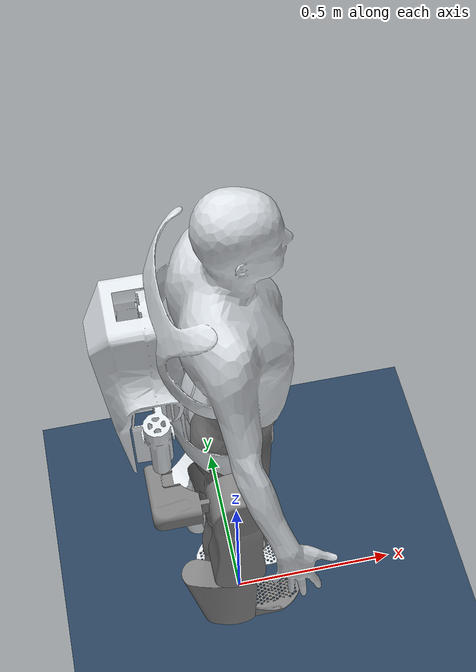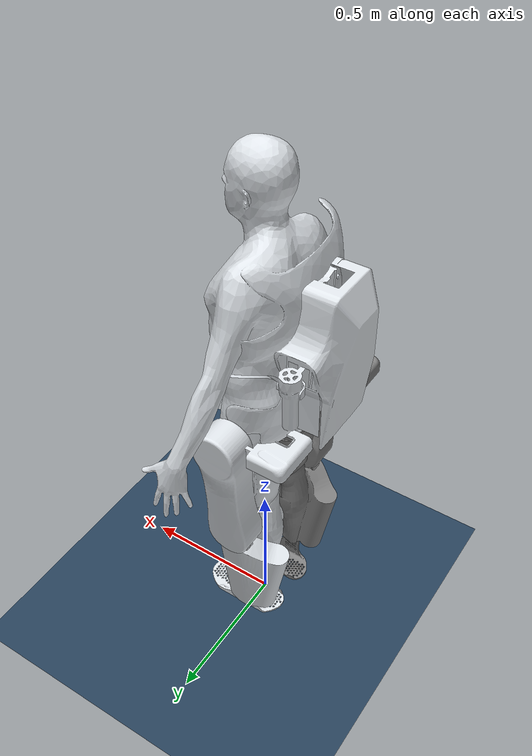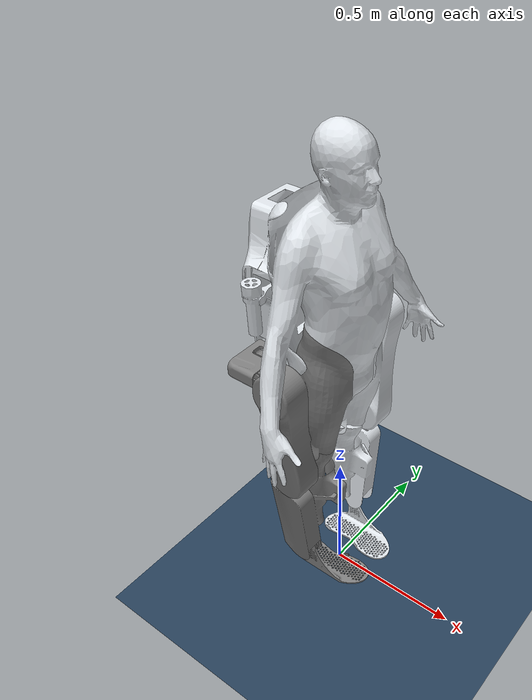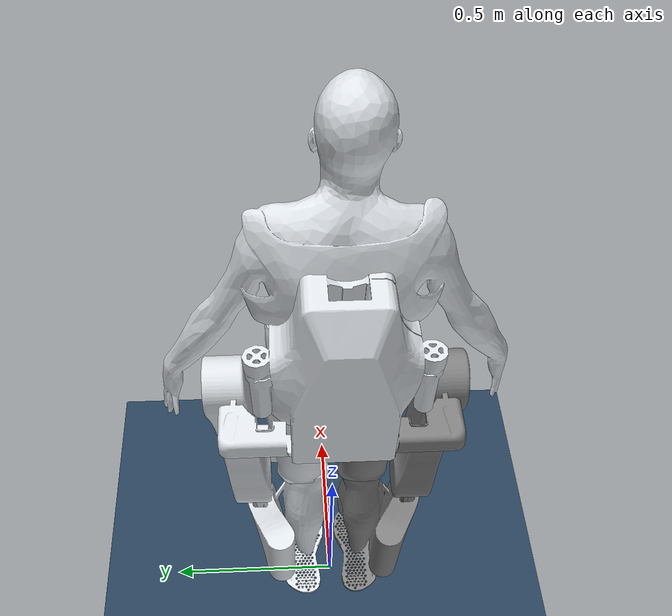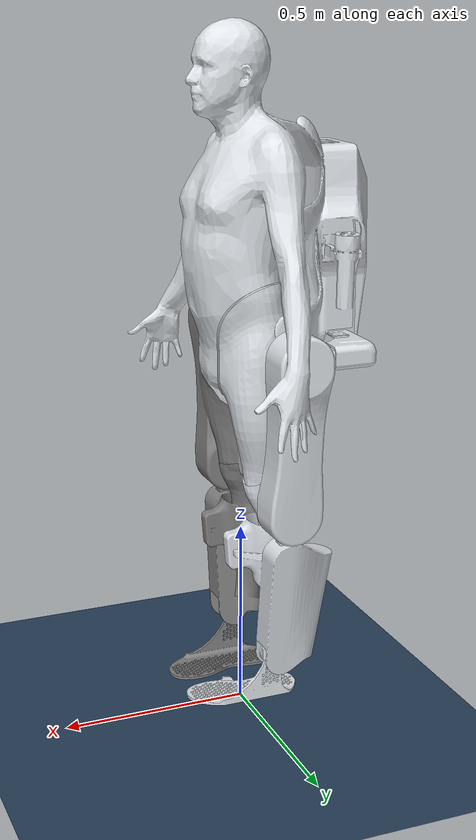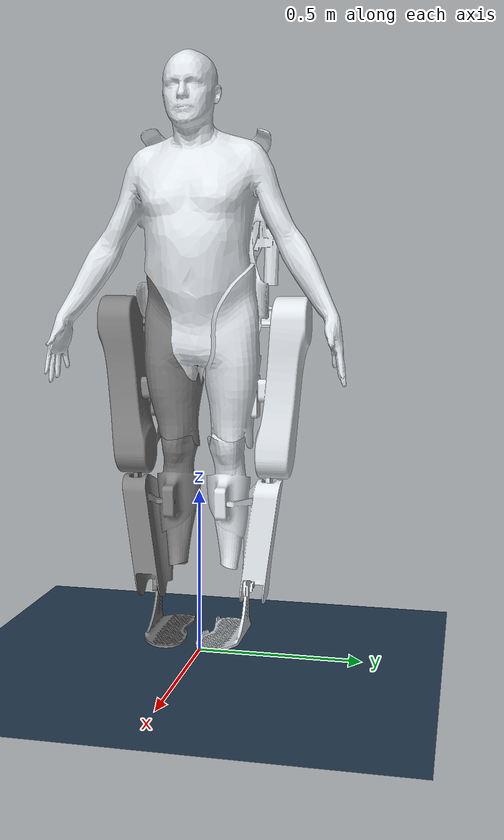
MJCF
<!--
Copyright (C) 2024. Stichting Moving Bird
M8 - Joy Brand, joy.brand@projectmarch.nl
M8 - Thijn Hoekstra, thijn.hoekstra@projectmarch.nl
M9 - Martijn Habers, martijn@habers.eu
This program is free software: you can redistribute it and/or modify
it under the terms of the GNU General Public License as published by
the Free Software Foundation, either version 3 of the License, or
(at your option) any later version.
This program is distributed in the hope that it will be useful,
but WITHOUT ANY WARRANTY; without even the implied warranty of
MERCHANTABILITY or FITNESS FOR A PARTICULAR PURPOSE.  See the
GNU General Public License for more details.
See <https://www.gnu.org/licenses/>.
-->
<mujoco model="exoskeleton">
  <compiler meshdir="obj-files" angle="degree" autolimits="true"/>
  <size nuser_actuator='1' nuser_sensor='1' nuser_geom='1'/>
  <option timestep='0.01' iterations='50' solver='PGS' gravity='0 0 -9.81'>
  </option>

  <asset>
    <texture type="skybox" builtin="gradient" rgb1=".3 .5 .7" rgb2="0 0 0" width="512" height="512"/>
    <texture name="body" type="cube" builtin="flat" mark="cross" width="127" height="1278"
             rgb1="0.8 0.6 0.4" rgb2="0.8 0.6 0.4" markrgb="1 1 1" random="0.01"/>
    <texture name="grid" type="2d" builtin="checker" width="512" height="512" rgb1=".1 .2 .3" rgb2=".2 .3 .4"/>
    <material name="grid" texture="grid" texrepeat="1 1" texuniform="true" reflectance=".2"/>
    <material name="march_grey" rgba=".87 .89 .91 1"/>
    <mesh name="backpack"    file="Backpack.obj"/>
    <mesh name="L_foot"      file="FootLeft.obj"/>
    <mesh name="L_hip"       file="HipLeft.obj"/>
    <mesh name="L_thigh"     file="UpperLegLeft.obj"/>
    <mesh name="L_shin"      file="LowerLegLeft.obj"/>
    <mesh name="R_foot"     scale="1 -1 1"    file="FootLeft.obj"/>
    <mesh name="R_hip"      scale="1 -1 1"    file="HipLeft.obj"/>
    <mesh name="R_thigh"    scale="1 -1 1"    file="UpperLegLeft.obj"/>
    <mesh name="R_shin"     scale="1 -1 1"    file="LowerLegLeft.obj"/>
  </asset>

  <default>
    <site group="5"/>
    <motor ctrlrange="-1 1" ctrllimited="true"/>
    <geom contype="0" conaffinity="0" condim="1" solref="0.005 1"/>
    <equality solref="0.005 1"/>
    <default class="exoskeleton">
      <geom material="march_grey" group="2"/>
    </default>
    <default class="collision">
      <geom contype="1" group="3" type="capsule"/>
      <default class="L_collision">
        <geom contype="2" conaffinity="4"/>
      </default>
      <default class="R_collision">
        <geom contype="4" conaffinity="2"/>
      </default>
    </default>
    <default class="HAA_joint">
      <joint damping="107.692308"
              armature="5.4"
             frictionloss="0" stiffness="0"/>
    </default>
    <default class="ADPF_joint">
      <joint damping="43.658537"
              armature="2.2"
             frictionloss="0" stiffness="0"/>
    </default>
    <default class="rotational_joint">
      <joint damping="63.451777"
              armature="9.98"
             frictionloss="0" stiffness="0"/>
    </default>
  </default>
  <default class="AIE_joint">
    <joint damping="0"
            armature="0"
           frictionloss="0" stiffness="0"/>
  </default>

  <visual>
    <map force="0.1" zfar="30"/>
    <rgba haze="0.15 0.25 0.35 1"/>
    <quality shadowsize="4096"/>
    <global offwidth="800" offheight="800"/>
  </visual>

  <worldbody>
    <geom name="floor" size="0 0 .05" type="plane" material="grid" conaffinity="15" condim="3"/>
    <light name="spotlight" mode="targetbodycom" target="backpack"
           diffuse=".8 .8 .8" specular="0.3 0.3 0.3" pos="0 -20 4" cutoff="10"/>

    <body name="safety_catcher" pos="-0.2 0 1">
      <inertial pos="0 0 0" mass="0.1" diaginertia="0.1 0.1 0.1"/>
      <joint name="safety_catch_slider_x" type="slide" axis="1 0 0" range="-10 10" pos="0 0 0"/>
      <joint name="safety_catch_slider_y" type="slide" axis="0 1 0" range="-10 10" pos="0 0 0"/>
      <joint name="safety_catch_slider_z" type="slide" axis="0 0 1" range="-10 10" pos="0 0 0"/>
      <joint name="safety_catch_hinge_z"  type="hinge" axis="0 0 1" range="-10 10" pos="0 0 0"/>

      <body name="backpack"
            pos="0 0 0"
            childclass="exoskeleton">
        <light name="top" pos="0 0 2" mode="trackcom"/>
        <camera name="diag" pos="3 -2.5 1" xyaxes="1 1 0 0 1 2" mode="trackcom"/>
        <camera name="right" pos="0 -3 1" xyaxes="1 0 0 0 1 2" mode="trackcom"/>
        <site name='imu_backpack' size='0.01' pos="0 0 0"/>
        <site name='tendon_top' size='0.01' pos="0.1 -0.006 0.642"/>
        <site name='tendon_left' size='0.01' pos="0.171 0.2 0"/>
        <site name='tendon_right' size='0.01' pos="0.171 -0.2 0"/>

        <inertial pos="0.171 -0.006 0.342" mass="57.096"
                  fullinertia="2.931 2.492 1.522 0.023 -0.1 0.025"/>
        <geom type="mesh" mesh="backpack" />
        <geom name="backpack" type="box"
              size="0.051 0.189 0.165"
              pos="-0.02 0 0.13" class="collision"/>

      <site name="imu_torso" size='0.01' pos="0.2 0 0.4"/>

        <!--  LEFT LEG -->
        <body name="L_hip" pos="-0.021 0.08 0.025">
          <inertial pos="0.05 0.109 0.033" mass="1.849"
                    fullinertia="0.012 0.013 0.012 -0.004 0.002 0"/>
          <joint name="L_HAA" axis="-1 0 0" range="-15 10" class="HAA_joint" />
          <geom type="mesh" mesh="L_hip" />
          <geom name="L_hip" fromto="0 0 0 0.182 0.182 0"
                size="0.032" class="L_collision"/>
          <site name="tor_L_HAA" size="0.01" pos="0 0 0"/>

          <body name="L_UL" pos="0.182 0.182 0">
          <inertial pos="0.012 -0.098 -0.151" mass="26.104"
                    fullinertia="0.859 0.733 0.23 0.021 -0.025 0.055"/>
            <joint name="L_HFE" axis="0 -1 0" range="-10 112.5" class="rotational_joint" />
            <geom type="mesh" mesh="L_thigh" pos="0 .013 0" />
            <geom name="L_UL" fromto="0 0 0 0 -0.06 -0.413"
                size="0.069" class="L_collision"/>
            <site name="tor_L_HFE" size="0.01" pos="0 0 0"/>

            <body name="L_LL" pos="0 -0.06 -0.413">
              <inertial pos="-0.021 -0.079 -0.157" mass="7.061"
                    fullinertia="0.12 0.117 0.034 0.003 -0.008 0.012"/>
              <joint name="L_KFE" axis="0 1 0" range="0 125" class="rotational_joint" />
              <geom type="mesh" mesh="L_shin"/>
              <geom name="L_LL" fromto="0 0 0 0.0 -0.037 -0.414"
                size="0.047" class="L_collision"/>
              <site name="tor_L_KFE" size="0.01" pos="0 0 0"/>

              <body name="L_ankle" pos="0.0 -0.037 -0.385">
                <inertial pos="0.0 0.0 0.0" mass="1.0"
                    fullinertia="0.008 0.010 0.006 0.001 0.004 -0.001"/>
                <joint name="L_ADPF" axis="0 -1 0" range="-25 10" class="ADPF_joint"/>
                <site name="tor_L_ADPF" size="0.01" pos="0 0 0"/>

                <body name="L_foot" pos="0.0 0.0 -0.029">
                  <inertial pos="0.007 -0.054 -0.035" mass="1.964"
                      fullinertia="0.015 0.021 0.013 0.003 0.007 -0.003"/>
                  <geom type="mesh" mesh="L_foot"/>

                  <!-- The L_foot geometry models a footplate which extends past the pressure pads on the soles-->
                  <geom name="L_foot" type="box" size="0.159 0.057 0.007"
                      pos="0.069 -0.086 -0.118"  class="L_collision"
                      friction="3.0"/>
                  </body>
              </body>
            </body>
          </body>
        </body>
      </body>

      <!--  RIGHT LEG -->
      <body name="R_hip" pos="-0.021 -0.08 0.025">
        <inertial pos="0.05 -0.109 0.033" mass="1.849"
                  fullinertia="0.012 0.013 0.012 0.004 0.002 -0"/>
        <joint name="R_HAA" axis="1 0 0" range="-15 10" class="HAA_joint"/>
        <geom type="mesh" mesh="R_hip" />
        <geom name="R_hip" fromto="0 0 0 0.182 -0.182 0"
              size="0.032" class="R_collision"/>
        <site name="tor_R_HAA" size="0.01" pos="0 0 0"/>

        <body name="R_UL" pos="0.182 -0.182 0">
          <inertial pos="0.012 0.098 -0.151" mass="26.104"
                  fullinertia="0.859 0.733 0.23 -0.021 -0.025 -0.055"/>
          <joint name="R_HFE" axis="0 -1 0" range="-10 112.5" class="rotational_joint"/>
          <geom type="mesh" mesh="R_thigh"/>
          <geom name="R_UL" fromto="0 0 0 0 0.06 -0.413"
              size="0.069" class="R_collision"/>
          <site name="tor_R_HFE" size="0.01" pos="0 0 0"/>

          <body name="R_LL" pos="0 0.06 -0.413">
            <inertial pos="-0.021 0.079 -0.157" mass="7.061"
                  fullinertia="0.12 0.117 0.034 -0.003 -0.008 -0.012"/>
            <joint name="R_KFE" axis="0 1 0" range="0 125" class="rotational_joint"/>
            <geom type="mesh" mesh="R_shin"/>
            <geom name="R_LL" fromto="0 0 0 0.0 0.037 -0.414"
              size="0.047" class="R_collision"/>
            <site name="tor_R_KFE" size="0.01" pos="0 0 0"/>

            <body name="R_ankle" pos="0.0 0.037 -0.385">
              <inertial pos="0.0 0.0 0.0" mass="1.0"
                  fullinertia="0.008 0.010 0.006 -0.001 0.004 0.001"/>
              <joint name="R_ADPF" axis="0 -1 0" range="-25 10" class="ADPF_joint"/>
              <site name="tor_R_ADPF" size="0.01" pos="0 0 0"/>

              <body name="R_foot" pos="0.0 0.0 -0.029">
                <inertial pos="0.007 0.054 -0.035" mass="2.964"
                    fullinertia="0.023 0.031 0.019 -0.004 0.011 0.004"/>
                <geom type="mesh" mesh="R_foot"/>

                <!-- The R_foot geometry models a footplate which extends past the pressure pads on the soles-->
                <geom name="R_foot" type="box" size="0.159 0.057 0.007"
                    pos="0.069 0.086 -0.118"  class="R_collision"
                    friction="3.0"/>
                </body>
            </body>
          </body>
        </body>
      </body>

    </body>
  </worldbody>

  <actuator>
    <!-- User parameter is the maximum no-load motor RPM -->
    <motor name="left_ankle"    gear="179"  joint="L_ADPF"  />
    <motor name="left_hip_aa"     gear="280"  joint="L_HAA"  />
    <motor name="left_hip_fe"     gear="250" joint="L_HFE"   />
    <motor name="left_knee"     gear="250"  joint="L_KFE"   />
    <motor name="right_ankle"    gear="179"  joint="R_ADPF"  />
    <motor name="right_hip_aa"     gear="280"  joint="R_HAA"  />
    <motor name="right_hip_fe"     gear="250" joint="R_HFE"   />
    <motor name="right_knee"     gear="250"  joint="R_KFE" />
  </actuator>

  <sensor>
    <!-- User parameter is the number of absolute encoder bits -->
    <!-- encodersoutput position; connected to the actuator -->
    <jointpos name="L_ADPF_pos_output" joint="L_ADPF" user="18" noise="000"/>
    <jointpos name="L_HAA_pos_output" joint="L_HAA" user="18" noise="000"/>
    <jointpos name="L_HFE_pos_output" joint="L_HFE" user="18" noise="000"/>
    <jointpos name="L_KFE_pos_output" joint="L_KFE" user="18" noise="000"/>
    <jointpos name="R_ADPF_output" joint="R_ADPF" user="18" noise="000"/>
    <jointpos name="R_HAA_output" joint="R_HAA" user="18" noise="000"/>
    <jointpos name="R_HFE_output" joint="R_HFE" user="18" noise="000"/>
    <jointpos name="R_KFE_output" joint="R_KFE" user="18" noise="000"/>
    <!-- encodersoutput velocity; connected to the actuator -->
    <jointvel name="L_ADPF_vel_output" joint="L_ADPF" user="18" noise="000"/>
    <jointvel name="L_HAA_vel_output" joint="L_HAA" user="18" noise="000"/>
    <jointvel name="L_HFE_vel_output" joint="L_HFE" user="18" noise="000"/>
    <jointvel name="L_KFE_vel_output" joint="L_KFE" user="18" noise="000"/>
    <jointvel name="R_ADPF_vel_output" joint="R_ADPF" user="18" noise="000"/>
    <jointvel name="R_HAA_vel_output" joint="R_HAA" user="18" noise="000"/>
    <jointvel name="R_HFE_vel_output" joint="R_HFE" user="18" noise="000"/>
    <jointvel name="R_KFE_vel_output" joint="R_KFE" user="18" noise="000"/>
    <!-- torque sensors; connected to the actuator-->

<!--    TODO: This could also be of the type actuatorvel -->
    <torque name="L_ADPF_tor_output" site="tor_L_ADPF" user="13" noise="000"/>
    <torque name="L_HAA_tor_output" site="tor_L_HAA" user="13" noise="000"/>
    <torque name="L_HFE_tor_output" site="tor_L_HFE" user="13" noise="000"/>
    <torque name="L_KFE_tor_output" site="tor_L_KFE" user="13" noise="000"/>
    <torque name="R_ADPF_tor_output" site="tor_R_ADPF" user="13" noise="000"/>
    <torque name="R_HAA_tor_output" site="tor_R_HAA" user="13" noise="000"/>
    <torque name="R_HFE_tor_output" site="tor_R_HFE" user="13" noise="000"/>
    <torque name="R_KFE_tor_output" site="tor_R_KFE" user="13" noise="000"/>

    <!-- Noise & cutoff must be determined -->
    <framepos name='backpack_position' objtype='site' objname='imu_backpack'/>
    <framelinvel name='backpack_velocity' objtype='site' objname='imu_backpack'/>
    <framequat name='backpack_orientation' objtype='site' objname='imu_backpack'/>
    <gyro name='vel_imu_backpack' site='imu_backpack' noise='5e-4' cutoff='34.9'/>
    <accelerometer name='acc_imu_backpack' site='imu_backpack' noise='1e-5' cutoff='157'/>
    <magnetometer name='magnet_imu_backpack' site='imu_backpack'/>

    <framequat name='torso_orientation' objtype='site' objname='imu_torso'/>
    <gyro name='vel_imu_torso' site='imu_torso' noise='5e-4' cutoff='34.9'/>
    <accelerometer name='acc_imu_torso' site='imu_torso' noise='1e-5' cutoff='157'/>
    <magnetometer name='magnet_imu_torso' site='imu_torso'/>

  </sensor>
</mujoco>
